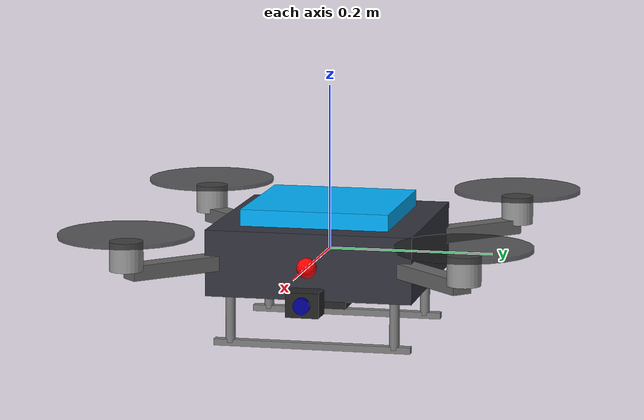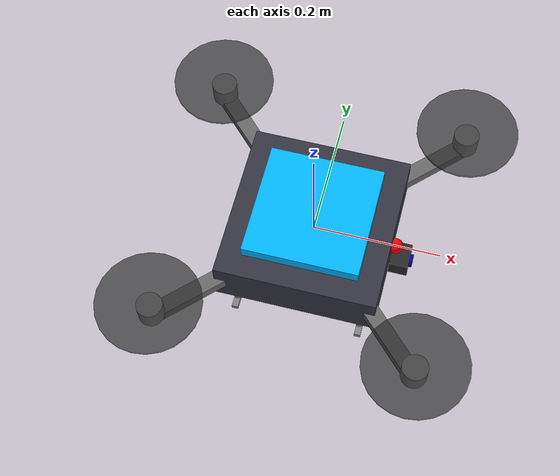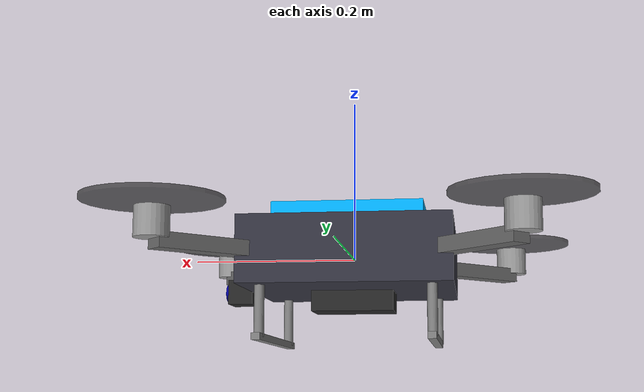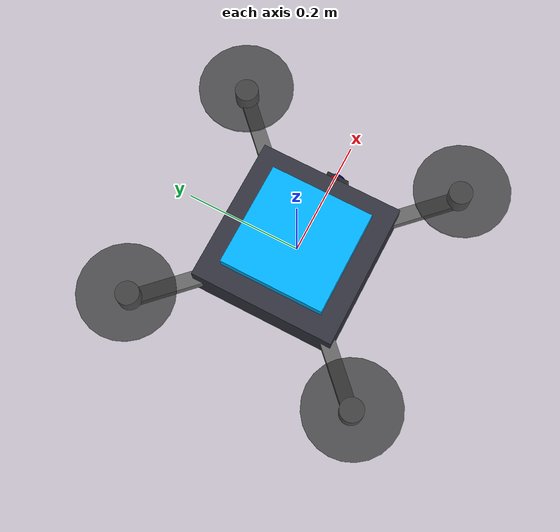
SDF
<?xml version="1.0" ?>
<sdf version="1.6">
  <model name="simple_drone">
    <static>true</static>

    <!-- BASE LINK: Central body + arms + rotors + sensors             -->
    <!-- A realistic quadcopter built entirely from SDF primitives     -->
    <link name="base_link">
      <inertial>
        <mass>1.5</mass>
        <inertia>
          <ixx>0.0347</ixx>
          <iyy>0.0458</iyy>
          <izz>0.0977</izz>
        </inertia>
      </inertial>

      <!-- ======================== BODY ======================== -->
      <!-- Main fuselage — rounded box -->
      <collision name="body_collision">
        <geometry>
          <box>
            <size>0.25 0.25 0.08</size>
          </box>
        </geometry>
      </collision>
      <visual name="body_visual">
        <geometry>
          <box>
            <size>0.25 0.25 0.08</size>
          </box>
        </geometry>
        <material>
          <ambient>0.15 0.15 0.18 1</ambient>
          <diffuse>0.2 0.2 0.25 1</diffuse>
          <specular>0.3 0.3 0.3 1</specular>
        </material>
      </visual>

      <!-- Top cover — slightly smaller accent piece -->
      <visual name="top_cover">
        <pose>0 0 0.05 0 0 0</pose>
        <geometry>
          <box>
            <size>0.18 0.18 0.02</size>
          </box>
        </geometry>
        <material>
          <ambient>0.0 0.6 0.9 1</ambient>
          <diffuse>0.0 0.7 1.0 1</diffuse>
          <specular>0.5 0.5 0.5 1</specular>
        </material>
      </visual>

      <!-- Battery pack underneath -->
      <visual name="battery_pack">
        <pose>0 0 -0.05 0 0 0</pose>
        <geometry>
          <box>
            <size>0.1 0.06 0.03</size>
          </box>
        </geometry>
        <material>
          <ambient>0.1 0.1 0.1 1</ambient>
          <diffuse>0.15 0.15 0.15 1</diffuse>
        </material>
      </visual>

      <!-- LED indicator (front — so you can tell which way it faces) -->
      <visual name="front_led">
        <pose>0.13 0 0 0 0 0</pose>
        <geometry>
          <sphere>
            <radius>0.012</radius>
          </sphere>
        </geometry>
        <material>
          <ambient>1.0 0.0 0.0 1</ambient>
          <diffuse>1.0 0.0 0.0 1</diffuse>
          <emissive>1.0 0.0 0.0 1</emissive>
        </material>
      </visual>

      <!-- ======================== ARMS ======================== -->
      <!-- Front-Right arm -->
      <visual name="arm_fr">
        <pose>0.12 -0.12 0 0 0 -0.785</pose>
        <geometry>
          <box>
            <size>0.22 0.025 0.018</size>
          </box>
        </geometry>
        <material>
          <ambient>0.3 0.3 0.3 1</ambient>
          <diffuse>0.4 0.4 0.4 1</diffuse>
        </material>
      </visual>

      <!-- Front-Left arm -->
      <visual name="arm_fl">
        <pose>0.12 0.12 0 0 0 0.785</pose>
        <geometry>
          <box>
            <size>0.22 0.025 0.018</size>
          </box>
        </geometry>
        <material>
          <ambient>0.3 0.3 0.3 1</ambient>
          <diffuse>0.4 0.4 0.4 1</diffuse>
        </material>
      </visual>

      <!-- Rear-Right arm -->
      <visual name="arm_rr">
        <pose>-0.12 -0.12 0 0 0 0.785</pose>
        <geometry>
          <box>
            <size>0.22 0.025 0.018</size>
          </box>
        </geometry>
        <material>
          <ambient>0.3 0.3 0.3 1</ambient>
          <diffuse>0.4 0.4 0.4 1</diffuse>
        </material>
      </visual>

      <!-- Rear-Left arm -->
      <visual name="arm_rl">
        <pose>-0.12 0.12 0 0 0 -0.785</pose>
        <geometry>
          <box>
            <size>0.22 0.025 0.018</size>
          </box>
        </geometry>
        <material>
          <ambient>0.3 0.3 0.3 1</ambient>
          <diffuse>0.4 0.4 0.4 1</diffuse>
        </material>
      </visual>

      <!-- ======================== MOTORS ======================== -->
      <!-- Front-Right motor housing -->
      <visual name="motor_fr">
        <pose>0.2 -0.2 0.02 0 0 0</pose>
        <geometry>
          <cylinder>
            <radius>0.02</radius>
            <length>0.035</length>
          </cylinder>
        </geometry>
        <material>
          <ambient>0.5 0.5 0.5 1</ambient>
          <diffuse>0.6 0.6 0.6 1</diffuse>
          <specular>0.8 0.8 0.8 1</specular>
        </material>
      </visual>

      <!-- Front-Left motor housing -->
      <visual name="motor_fl">
        <pose>0.2 0.2 0.02 0 0 0</pose>
        <geometry>
          <cylinder>
            <radius>0.02</radius>
            <length>0.035</length>
          </cylinder>
        </geometry>
        <material>
          <ambient>0.5 0.5 0.5 1</ambient>
          <diffuse>0.6 0.6 0.6 1</diffuse>
          <specular>0.8 0.8 0.8 1</specular>
        </material>
      </visual>

      <!-- Rear-Right motor housing -->
      <visual name="motor_rr">
        <pose>-0.2 -0.2 0.02 0 0 0</pose>
        <geometry>
          <cylinder>
            <radius>0.02</radius>
            <length>0.035</length>
          </cylinder>
        </geometry>
        <material>
          <ambient>0.5 0.5 0.5 1</ambient>
          <diffuse>0.6 0.6 0.6 1</diffuse>
          <specular>0.8 0.8 0.8 1</specular>
        </material>
      </visual>

      <!-- Rear-Left motor housing -->
      <visual name="motor_rl">
        <pose>-0.2 0.2 0.02 0 0 0</pose>
        <geometry>
          <cylinder>
            <radius>0.02</radius>
            <length>0.035</length>
          </cylinder>
        </geometry>
        <material>
          <ambient>0.5 0.5 0.5 1</ambient>
          <diffuse>0.6 0.6 0.6 1</diffuse>
          <specular>0.8 0.8 0.8 1</specular>
        </material>
      </visual>

      <!-- ======================== PROPELLERS ======================== -->
      <!-- Front-Right propeller (disc) -->
      <visual name="prop_fr">
        <pose>0.2 -0.2 0.045 0 0 0</pose>
        <geometry>
          <cylinder>
            <radius>0.08</radius>
            <length>0.005</length>
          </cylinder>
        </geometry>
        <material>
          <ambient>0.1 0.1 0.1 0.7</ambient>
          <diffuse>0.15 0.15 0.15 0.7</diffuse>
        </material>
      </visual>

      <!-- Front-Left propeller -->
      <visual name="prop_fl">
        <pose>0.2 0.2 0.045 0 0 0</pose>
        <geometry>
          <cylinder>
            <radius>0.08</radius>
            <length>0.005</length>
          </cylinder>
        </geometry>
        <material>
          <ambient>0.1 0.1 0.1 0.7</ambient>
          <diffuse>0.15 0.15 0.15 0.7</diffuse>
        </material>
      </visual>

      <!-- Rear-Right propeller -->
      <visual name="prop_rr">
        <pose>-0.2 -0.2 0.045 0 0 0</pose>
        <geometry>
          <cylinder>
            <radius>0.08</radius>
            <length>0.005</length>
          </cylinder>
        </geometry>
        <material>
          <ambient>0.1 0.1 0.1 0.7</ambient>
          <diffuse>0.15 0.15 0.15 0.7</diffuse>
        </material>
      </visual>

      <!-- Rear-Left propeller -->
      <visual name="prop_rl">
        <pose>-0.2 0.2 0.045 0 0 0</pose>
        <geometry>
          <cylinder>
            <radius>0.08</radius>
            <length>0.005</length>
          </cylinder>
        </geometry>
        <material>
          <ambient>0.1 0.1 0.1 0.7</ambient>
          <diffuse>0.15 0.15 0.15 0.7</diffuse>
        </material>
      </visual>

      <!-- ======================== LANDING GEAR ======================== -->
      <!-- Front-left leg -->
      <visual name="leg_fl">
        <pose>0.1 0.1 -0.06 0 0 0</pose>
        <geometry>
          <cylinder>
            <radius>0.006</radius>
            <length>0.08</length>
          </cylinder>
        </geometry>
        <material>
          <ambient>0.4 0.4 0.4 1</ambient>
          <diffuse>0.5 0.5 0.5 1</diffuse>
        </material>
      </visual>

      <!-- Front-right leg -->
      <visual name="leg_fr">
        <pose>0.1 -0.1 -0.06 0 0 0</pose>
        <geometry>
          <cylinder>
            <radius>0.006</radius>
            <length>0.08</length>
          </cylinder>
        </geometry>
        <material>
          <ambient>0.4 0.4 0.4 1</ambient>
          <diffuse>0.5 0.5 0.5 1</diffuse>
        </material>
      </visual>

      <!-- Rear-left leg -->
      <visual name="leg_rl">
        <pose>-0.1 0.1 -0.06 0 0 0</pose>
        <geometry>
          <cylinder>
            <radius>0.006</radius>
            <length>0.08</length>
          </cylinder>
        </geometry>
        <material>
          <ambient>0.4 0.4 0.4 1</ambient>
          <diffuse>0.5 0.5 0.5 1</diffuse>
        </material>
      </visual>

      <!-- Rear-right leg -->
      <visual name="leg_rr">
        <pose>-0.1 -0.1 -0.06 0 0 0</pose>
        <geometry>
          <cylinder>
            <radius>0.006</radius>
            <length>0.08</length>
          </cylinder>
        </geometry>
        <material>
          <ambient>0.4 0.4 0.4 1</ambient>
          <diffuse>0.5 0.5 0.5 1</diffuse>
        </material>
      </visual>

      <!-- Landing skid — front -->
      <visual name="skid_front">
        <pose>0.1 0 -0.1 0 0 0</pose>
        <geometry>
          <box>
            <size>0.01 0.24 0.008</size>
          </box>
        </geometry>
        <material>
          <ambient>0.4 0.4 0.4 1</ambient>
          <diffuse>0.5 0.5 0.5 1</diffuse>
        </material>
      </visual>

      <!-- Landing skid — rear -->
      <visual name="skid_rear">
        <pose>-0.1 0 -0.1 0 0 0</pose>
        <geometry>
          <box>
            <size>0.01 0.24 0.008</size>
          </box>
        </geometry>
        <material>
          <ambient>0.4 0.4 0.4 1</ambient>
          <diffuse>0.5 0.5 0.5 1</diffuse>
        </material>
      </visual>

      <!-- ======================== CAMERA GIMBAL ======================== -->
      <!-- Camera housing (front-mounted, angled down slightly) -->
      <visual name="camera_housing">
        <pose>0.14 0 -0.04 0 0.0 0</pose>
        <geometry>
          <box>
            <size>0.03 0.04 0.03</size>
          </box>
        </geometry>
        <material>
          <ambient>0.1 0.1 0.1 1</ambient>
          <diffuse>0.15 0.15 0.15 1</diffuse>
        </material>
      </visual>

      <!-- Camera lens -->
      <visual name="camera_lens">
        <pose>0.155 0 -0.04 0 1.5708 0</pose>
        <geometry>
          <cylinder>
            <radius>0.01</radius>
            <length>0.01</length>
          </cylinder>
        </geometry>
        <material>
          <ambient>0.0 0.0 0.4 1</ambient>
          <diffuse>0.0 0.0 0.6 1</diffuse>
          <specular>0.9 0.9 1.0 1</specular>
        </material>
      </visual>

      <!-- ======================== SENSORS ======================== -->

      <!-- RGB Camera Sensor (Depth disabled to prevent Xvfb software-rendering crashes) -->
      <sensor name="camera_sensor" type="camera">
        <pose>0.2 0 -0.04 0 0.0 0</pose>
        <visualize>true</visualize>
        <update_rate>30.0</update_rate>
        <camera name="head">
          <horizontal_fov>1.3962634</horizontal_fov>
          <image>
            <width>640</width>
            <height>480</height>
            <format>R8G8B8</format>
          </image>
          <clip>
            <near>0.02</near>
            <far>300</far>
          </clip>
        </camera>
        <plugin name="camera_controller" filename="libgazebo_ros_camera.so">
          <ros>
            <remapping>~/image_raw:=/camera/image_raw</remapping>
            <remapping>~/camera_info:=/camera/camera_info</remapping>
          </ros>
          <camera_name>drone_camera</camera_name>
          <frame_name>camera_link</frame_name>
        </plugin>
      </sensor>

      <!-- LiDAR Sensor (same ROS topics as before) -->
      <sensor name="lidar_sensor" type="ray">
        <pose>0.0 0 0.06 0 0 0</pose>
        <visualize>false</visualize>
        <update_rate>10</update_rate>
        <ray>
          <scan>
            <horizontal>
              <samples>360</samples>
              <resolution>1</resolution>
              <min_angle>-3.14159</min_angle>
              <max_angle>3.14159</max_angle>
            </horizontal>
          </scan>
          <range>
            <min>0.12</min>
            <max>10.0</max>
            <resolution>0.01</resolution>
          </range>
        </ray>
        <plugin name="lidar_controller" filename="libgazebo_ros_ray_sensor.so">
          <ros>
            <remapping>~/out:=/scan</remapping>
          </ros>
          <output_type>sensor_msgs/LaserScan</output_type>
          <frame_name>lidar_link</frame_name>
        </plugin>
      </sensor>

      <!-- IMU Sensor (accelerometer + gyroscope) -->
      <sensor name="imu_sensor" type="imu">
        <pose>0 0 0 0 0 0</pose>
        <always_on>true</always_on>
        <update_rate>100.0</update_rate>
        <imu>
          <angular_velocity>
            <x><noise type="gaussian"><mean>0.0</mean><stddev>0.0002</stddev></noise></x>
            <y><noise type="gaussian"><mean>0.0</mean><stddev>0.0002</stddev></noise></y>
            <z><noise type="gaussian"><mean>0.0</mean><stddev>0.0002</stddev></noise></z>
          </angular_velocity>
          <linear_acceleration>
            <x><noise type="gaussian"><mean>0.0</mean><stddev>0.017</stddev></noise></x>
            <y><noise type="gaussian"><mean>0.0</mean><stddev>0.017</stddev></noise></y>
            <z><noise type="gaussian"><mean>0.0</mean><stddev>0.017</stddev></noise></z>
          </linear_acceleration>
        </imu>
        <plugin name="imu_controller" filename="libgazebo_ros_imu_sensor.so">
          <ros>
            <remapping>~/out:=/imu/data</remapping>
          </ros>
          <frame_name>base_link</frame_name>
          <initial_orientation_as_reference>false</initial_orientation_as_reference>
        </plugin>
      </sensor>
    </link>

    <!-- Kinematic prototype: movement controlled by kinematics_node via /set_entity_state -->

  </model>
</sdf>
